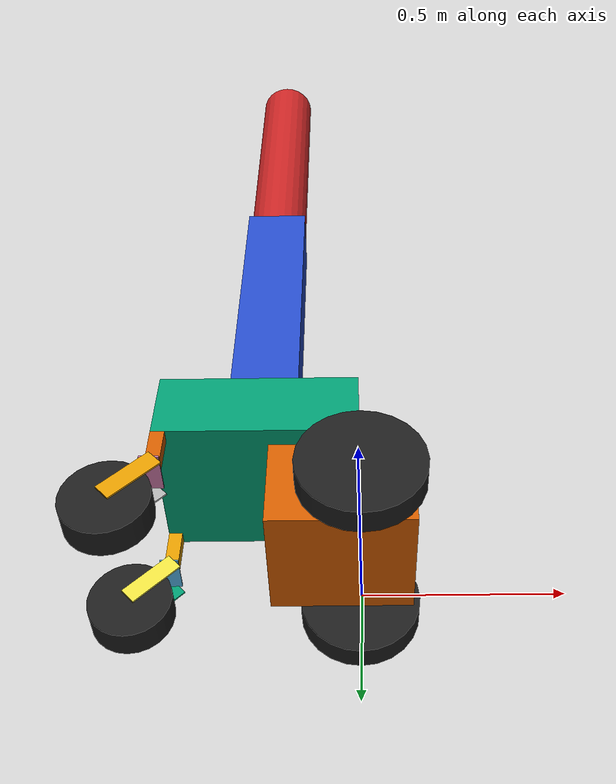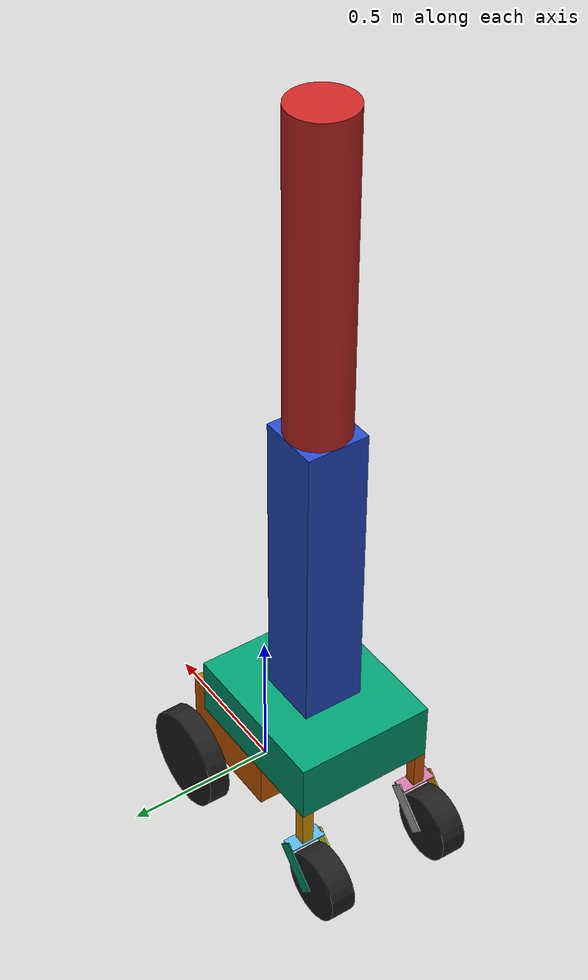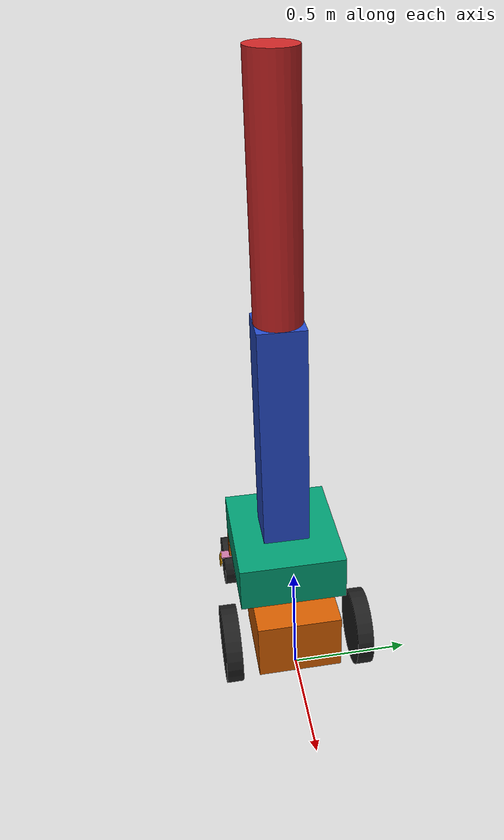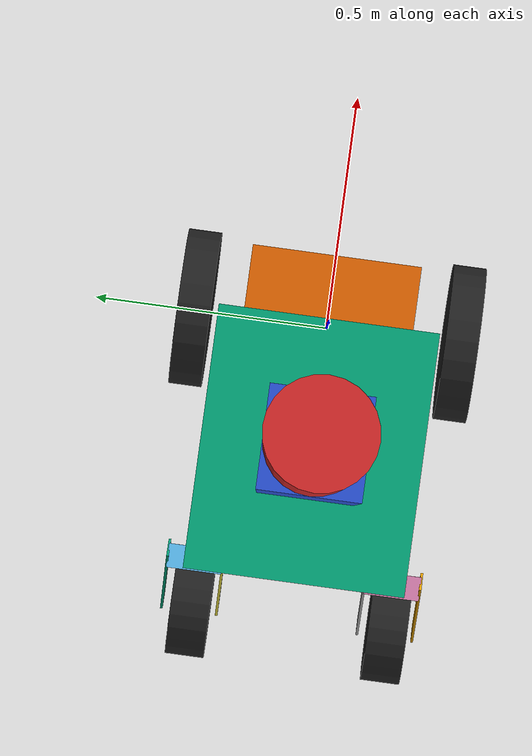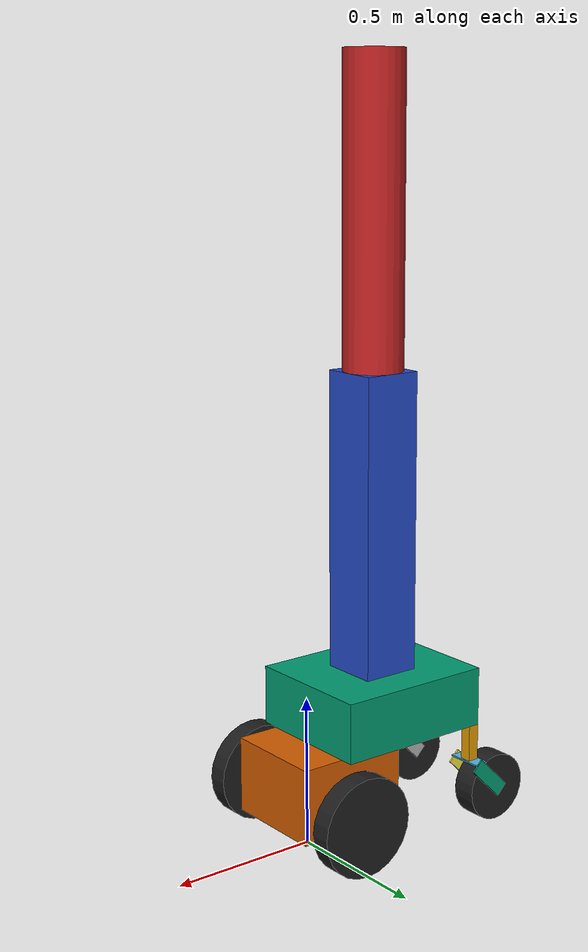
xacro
<?xml version="1.0"?>
<robot
     xmlns:xacro="http://www.ros.org/wiki/xacro" name="mobot">
  <xacro:include filename="$(find mobot_urdf)/urdf/mobot_w_jnt_pub.xacro" />
  <xacro:include filename="$(find minimal_robot_description)/minimal_robot_w_jnt_pub.urdf" />

  <!-- attach the simple arm to the mobile robot -->
  <joint name="arm_base_joint" type="fixed">
    <parent link="base_link" />
    <child link="link1" />
    <origin rpy="0 0 0 " xyz="${-bodylen/2} 0 ${bodyOZ+bodyheight/2}"/>
  </joint>
</robot>

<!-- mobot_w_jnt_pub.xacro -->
<robot
     xmlns:xacro="http://www.ros.org/wiki/xacro" name="mobot">
     <!-- define the base-link origin to lie at floor level, between the drive wheels-->
     <!--main body is a simple box; origin is a center of box-->
    <xacro:property name="bodylen" value="0.5461" />
    <xacro:property name="bodywidth" value="0.4572" />
    <xacro:property name="bodyheight" value="0.2" />
    <xacro:property name="bodyclearance" value="0.4" />  <!--clearance from bottom of box to ground-->
    <!-- derived values-->
    <xacro:property name="half_bodylen" value="${bodylen/2.0}" />
    <xacro:property name="half_bodyheight" value="${bodyheight/2.0}" />
    <!-- placement of main body relative to base link frame -->
    <xacro:property name="bodyOX" value="${-half_bodylen}" />
    <xacro:property name="bodyOY" value="0" />
    <xacro:property name="bodyOZ" value="0.45" />

    <!-- define the drive-wheel dimensions-->
    <xacro:property name="tirediam" value="0.3302" />
    <xacro:property name="tirerad" value="${tirediam/2.0}" />
    <xacro:property name="tirewidth" value="0.06985" />
    <!-- "track" is the distance between the drive wheels -->
    <xacro:property name="track" value=".56515" />

    <!-- battery box dimensions -->
    <xacro:property name="batterylen" value="0.381" />
    <xacro:property name="batterywidth" value="0.3556" />
    <xacro:property name="batteryheight" value="0.254" />
    <!-- placement of battery box relative to base frame -->
    <xacro:property name="batOX" value="-0.05" />
    <xacro:property name="batOY" value="0" />
    <xacro:property name="batOZ" value="0.22" />

    <xacro:property name="M_PI" value="3.1415926535897931" />
    <xacro:property name="boschwidth" value="0.0381" />
    <xacro:property name="casterdrop" value="0.125" />
    <xacro:property name="bracketwidth" value="0.1175" />
    <xacro:property name="bracketheight" value="0.16" />
    <xacro:property name="bracketthick" value="0.0508" />
    <xacro:property name="bracketangle" value="0.7854" />
    <xacro:property name="casterwidth" value="0.0826" />
    <xacro:property name="casterdiam" value="0.2286" />

    <!--here is a default inertia matrix with small, but legal values; use this when don't need accuracy for I -->
    <!--model will assign inertia matrix dominated by main body box -->
    <xacro:macro name="default_inertial" params="mass">
        <inertial>
            <mass value="${mass}" />
            <inertia ixx="0.01" ixy="0.0" ixz="0.0"
         iyy="0.01" iyz="0.0"
         izz="0.01" />
        </inertial>
    </xacro:macro>
    <xacro:macro name="wheel" params="prefix reflect">
        <link name="${prefix}_wheel">
            <visual>
                <geometry>
                    <cylinder radius="${tirerad}" length="${tirewidth}"/>
                </geometry>
            </visual>
            <collision>
                <geometry>
                    <cylinder radius="${tirerad}" length="${tirewidth}"/>
                </geometry>
            </collision>
            <inertial>
            <!--assign inertial properties to drive wheels -->
            <mass value="1" />
            <inertia ixx="0.1" ixy="0" ixz="0"
              iyy="0.1" iyz="0"
              izz="0.1" />
        </inertial>
        </link>
        <joint name="${prefix}_wheel_joint" type="continuous">
            <axis xyz="0 0 1"/>
            <parent link="base_link"/>
            <child link="${prefix}_wheel"/>
            <origin xyz="0 ${reflect*track/2} ${tirerad}" rpy="0 ${M_PI/2} ${M_PI/2}"/>
            <limit effort="100" velocity="15" />
            <joint_properties damping="0.0" friction="0.0" />
        </joint>
    </xacro:macro>
    <xacro:macro name="caster" params="prefix reflect">
        <link name="castdrop_${prefix}">
            <visual>
                <geometry>
                    <box size="${boschwidth} ${boschwidth} ${casterdrop}"/>
                </geometry>
                <origin xyz="0 0 0" rpy="0 0 0"/>
            </visual>
            <collision>
                <geometry>
                    <box size="${boschwidth} ${boschwidth} ${casterdrop}"/>
                </geometry>
                <origin xyz="0 0 0" rpy="0 0 0"/>
            </collision>
            <xacro:default_inertial mass="0.2"/>
        </link>
        <joint name="cast2base_${prefix}" type="fixed">
            <parent link="base_link"/>
            <child link="castdrop_${prefix}"/>
            <origin xyz="${-bodylen/2+bodyOX+boschwidth/2} ${reflect*bodywidth/2-reflect*boschwidth/2} ${-casterdrop/2-bodyheight/2+bodyOZ}" />
        </joint>
        <link name="brackettop_${prefix}">
            <visual>
                <geometry>
                    <box size="${bracketwidth} ${bracketthick} .005"/>
                </geometry>
                <origin xyz="0 0 0" rpy="0 0 0"/>
            </visual>
            <collision>
                <geometry>
                    <box size="${bracketwidth} ${bracketthick} .005"/>
                </geometry>
                <origin xyz="0 0 0" rpy="0 0 0"/>
            </collision>
            <xacro:default_inertial mass="0.2"/>
        </link>
        <joint name="cast2bracket_${prefix}" type="continuous">
            <axis xyz="0 0 1"/>
            <parent link="castdrop_${prefix}"/>
            <child link="brackettop_${prefix}"/>
            <origin xyz="0 0 ${-casterdrop/2}" rpy="0 0 ${M_PI/2}"/>
            <joint_properties damping="0.0" friction="0.0" />
        </joint>
        <link name="bracketside1_${prefix}">
            <visual>
                <geometry>
                    <box size="${bracketthick} ${bracketheight} .005"/>
                </geometry>
                <origin xyz="0 0 0" rpy="${M_PI/2} ${-bracketangle} ${M_PI/2}"/>
            </visual>
            <collision>
                <geometry>
                    <box size="${bracketthick} ${bracketheight} .005"/>
                </geometry>
                <origin xyz="0 0 0" rpy="${M_PI/2} ${-bracketangle} ${M_PI/2}"/>
            </collision>
            <xacro:default_inertial mass="0.2"/>
        </link>
        <joint name="brack2top1_${prefix}" type="fixed">
            <parent link="brackettop_${prefix}"/>
            <child link="bracketside1_${prefix}"/>
            <origin xyz="${bracketwidth/2} .04 -${bracketheight/2-.02}" rpy="0 0 0" />
        </joint>
        <link name="bracketside2_${prefix}">
            <visual>
                <geometry>
                    <box size="${bracketthick} ${bracketheight} .005"/>
                </geometry>
                <origin xyz="0 0 0" rpy="${M_PI/2} ${-bracketangle} ${M_PI/2}"/>
            </visual>
            <collision>
                <geometry>
                    <box size="${bracketthick} ${bracketheight} .005"/>
                </geometry>
                <origin xyz="0 0 0" rpy="${M_PI/2} ${-bracketangle} ${M_PI/2}"/>
            </collision>
            <xacro:default_inertial mass="0.2"/>
        </link>
        <joint name="brack2top2_${prefix}" type="fixed">
            <parent link="brackettop_${prefix}"/>
            <child link="bracketside2_${prefix}"/>
            <origin xyz="${-bracketwidth/2} .04 -${bracketheight/2-.02}" rpy="0 0 0" />
        </joint>
        <link name="${prefix}_casterwheel">
            <visual>
                <geometry>
                    <cylinder radius="${casterdiam/2}" length="${casterwidth}"/>
                </geometry>
            </visual>
            <collision>
                <geometry>
                    <cylinder radius="${casterdiam/2}" length="${casterwidth}"/>
                </geometry>
            </collision>
            <!-- accept default inertial properties for caster wheels-->
            <xacro:default_inertial mass="0.5"/>
        </link>
        <joint name="${prefix}_caster_joint" type="continuous">
            <axis xyz="0 0 1"/>
            <parent link="bracketside1_${prefix}"/>
            <child link="${prefix}_casterwheel"/>
            <origin xyz="${-casterwidth/2-.02} .053 -.053" rpy="0 ${M_PI/2} 0"/>
            <limit effort="100" velocity="15" />
            <joint_properties damping="0.0" friction="0.0" />
        </joint>
    </xacro:macro>

    <xacro:caster prefix="left" reflect="1"/>
    <xacro:caster prefix="right" reflect="-1"/>

    <link name="base_link">
        <visual>
            <geometry>
                <box size="${bodylen} ${bodywidth} ${bodyheight}"/>
            </geometry>
            <origin xyz="${bodyOX} ${bodyOY} ${bodyOZ}" rpy="0 0 0"/>
        </visual>
        <collision>
            <geometry>
                <box size="${bodylen} ${bodywidth} ${bodyheight}"/>
            </geometry>
            <origin xyz="${bodyOX} ${bodyOY} ${bodyOZ}" rpy="0 0 0"/>
        </collision>
        <inertial>
            <!--assign almost all the mass to the main body box; set m= 100kg; treat I as approx m*r^2 -->
            <mass value="100" />
            <inertia ixx="10" ixy="0" ixz="0"
              iyy="10" iyz="0"
              izz="10" />
        </inertial>
    </link>

    <xacro:wheel prefix="left" reflect="1"/>
    <xacro:wheel prefix="right" reflect="-1"/>
    <link name="batterybox">
        <visual>
            <geometry>
                <box size="${batterylen} ${batterywidth} ${batteryheight}"/>
            </geometry>
            <origin xyz="0 0 0" rpy="0 0 0"/>
        </visual>
        <collision>
            <geometry>
                <box size="${batterylen} ${batterywidth} ${batteryheight}"/>
            </geometry>
            <origin xyz="0 0 0" rpy="0 0 0"/>
        </collision>
        <xacro:default_inertial mass="1"/>
    </link>
    <joint name="batterytobase" type="fixed">
        <parent link="base_link"/>
        <child link="batterybox"/>
        <origin xyz="${batOX} ${batOY} ${batOZ}" rpy="0 0 0"/>
    </joint>
 <gazebo>
  <plugin name="differential_drive_controller" filename="libgazebo_ros_diff_drive.so">
    <alwaysOn>true</alwaysOn>
    <updateRate>100</updateRate>
    <leftJoint>right_wheel_joint</leftJoint>
    <rightJoint>left_wheel_joint</rightJoint>
    <wheelSeparation>${track}</wheelSeparation>
    <wheelDiameter>${tirediam}</wheelDiameter>
    <torque>200</torque>
    <commandTopic>cmd_vel</commandTopic>
    <odometryTopic>odom</odometryTopic>
    <odometryFrame>odom</odometryFrame>
    <robotBaseFrame>base_link</robotBaseFrame>
    <publishWheelTF>true</publishWheelTF>
    <publishWheelJointState>true</publishWheelJointState>
  </plugin>
 </gazebo>

  <gazebo reference="right_wheel">
    <mu1>100000.0</mu1>
    <mu2>100000.0</mu2>
    <material>Gazebo/Black</material>
  </gazebo>
  <gazebo reference="left_wheel">
    <mu1>100000.0</mu1>
    <mu2>100000.0</mu2>
    <material>Gazebo/Black</material>
  </gazebo>

  <gazebo reference="right_casterwheel">
    <mu1>100000.0</mu1>
    <mu2>100000.0</mu2>
    <material>Gazebo/Black</material>
  </gazebo>

  <gazebo reference="left_casterwheel">
    <mu1>100000.0</mu1>
    <mu2>100000.0</mu2>
    <material>Gazebo/Black</material>
  </gazebo>
  <gazebo>
     <plugin name="joint_state_publisher" filename="libgazebo_ros_joint_state_publisher.so">
       <jointName>cast2bracket_right, cast2bracket_left, right_caster_joint, left_caster_joint </jointName>
     </plugin>
  </gazebo>
</robot>

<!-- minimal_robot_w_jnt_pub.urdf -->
<robot  name="one_DOF_robot">

<!-- same as minimal robot, except no static link fixing the robot to ground -->
 <!-- Base Link -->
  <link name="link1">
    <collision>
      <origin xyz="0 0 0.5" rpy="0 0 0"/>
      <geometry>
       <box size="0.2 0.2 0.7"/>
      </geometry>
    </collision>

    <visual>
      <origin xyz="0 0 0.5" rpy="0 0 0"/>
      <geometry>
        <box size="0.2 0.2 1"/>
      </geometry>
    </visual>

    <inertial>
      <origin xyz="0 0 0.5" rpy="0 0 0"/>
      <mass value="1"/>
      <inertia
        ixx="1.0" ixy="0.0" ixz="0.0"
        iyy="1.0" iyz="0.0"
        izz="1.0"/>
    </inertial>
  </link>
  <gazebo reference="link1">
    <material>Gazebo/Blue</material>
  </gazebo>
<!-- Moveable Link -->
  <link name="link2">
    <collision>
      <origin xyz="0 0 0.5" rpy="0 0 0"/>
      <geometry>
        <cylinder length="1" radius="0.1"/>
        <!--box size="0.15 0.15 0.8"-->
      </geometry>
    </collision>

    <visual>
      <origin xyz="0 0 0.5" rpy="0 0 0"/>
      <geometry>
        <cylinder length="1" radius="0.1"/>
      </geometry>
    </visual>

    <inertial>
      <origin xyz="0 0 0.5" rpy="0 0 0"/>
      <mass value="1"/>
      <inertia
        ixx="0.1" ixy="0.0" ixz="0.0"
        iyy="0.1" iyz="0.0"
        izz="0.005"/>
    </inertial>
  </link>
  <gazebo reference="link2">
    <material>Gazebo/Red</material>
  </gazebo>

  <joint name="joint1" type="revolute">
    <parent link="link1"/>
    <child link="link2"/>
    <origin xyz="0 0 1" rpy="0 0 0"/>
    <axis xyz="0 1 0"/>
    <limit effort="10.0" lower="0.0" upper="2.0" velocity="0.5"/>
    <dynamics damping="1.0"/>
  </joint>

  <transmission name="tran1">
    <type>transmission_interface/SimpleTransmission</type>
    <joint name="joint1">
      <hardwareInterface>EffortJointInterface</hardwareInterface>
    </joint>
    <actuator name="motor1">
      <hardwareInterface>EffortJointInterface</hardwareInterface>
      <mechanicalReduction>1</mechanicalReduction>
    </actuator>
  </transmission>
  <gazebo>
     <plugin name="gazebo_ros_control" filename="libgazebo_ros_control.so">
       <robotNamespace>/one_DOF_robot</robotNamespace>
     </plugin>
  </gazebo>
  <gazebo>
     <plugin name="joint_state_publisher" filename="libgazebo_ros_joint_state_publisher.so">
       <jointName>joint1</jointName>
     </plugin>
  </gazebo>
</robot>
